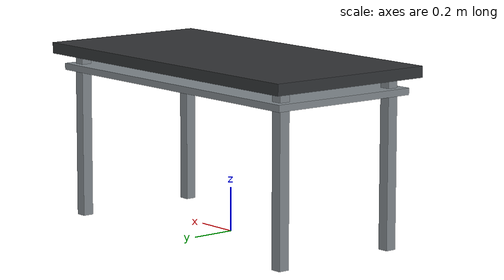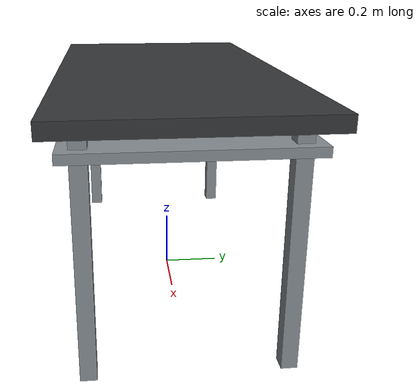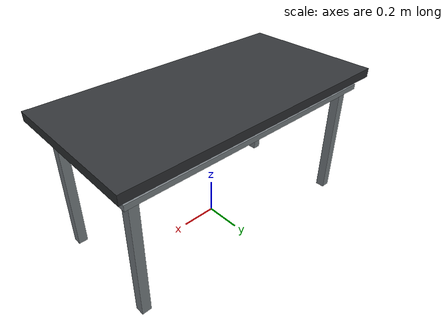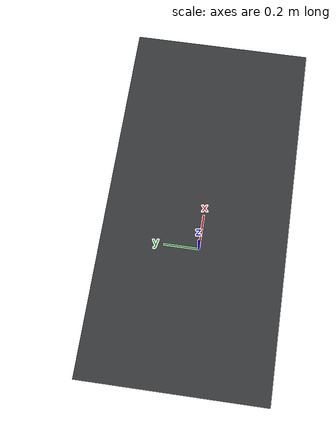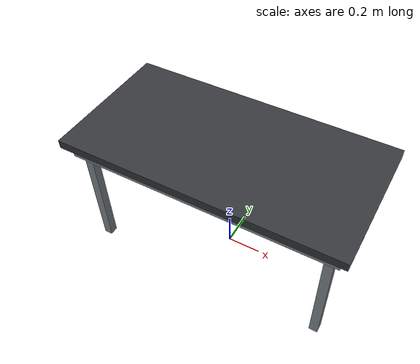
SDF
<?xml version="1.0"?>
<sdf version="1.6">
  <model name="work_table">
    <static>true</static>
    <link name="table">
      <collision name="top_collision">
        <pose>0 0 0.775 0 0 0</pose>
        <geometry>
          <box>
            <size>1.60 0.80 0.05</size>
          </box>
        </geometry>
      </collision>
      <collision name="leg_fl_collision">
        <pose>0.70 0.30 0.375 0 0 0</pose>
        <geometry>
          <box>
            <size>0.05 0.05 0.75</size>
          </box>
        </geometry>
      </collision>
      <collision name="leg_fr_collision">
        <pose>0.70 -0.30 0.375 0 0 0</pose>
        <geometry>
          <box>
            <size>0.05 0.05 0.75</size>
          </box>
        </geometry>
      </collision>
      <collision name="leg_rl_collision">
        <pose>-0.70 0.30 0.375 0 0 0</pose>
        <geometry>
          <box>
            <size>0.05 0.05 0.75</size>
          </box>
        </geometry>
      </collision>
      <collision name="leg_rr_collision">
        <pose>-0.70 -0.30 0.375 0 0 0</pose>
        <geometry>
          <box>
            <size>0.05 0.05 0.75</size>
          </box>
        </geometry>
      </collision>
      <visual name="top_visual">
        <pose>0 0 0.775 0 0 0</pose>
        <geometry>
          <box>
            <size>1.60 0.80 0.05</size>
          </box>
        </geometry>
        <material>
          <ambient>0.16 0.17 0.18 1</ambient>
          <diffuse>0.20 0.21 0.22 1</diffuse>
          <specular>0.06 0.06 0.06 1</specular>
        </material>
      </visual>
      <visual name="frame_visual">
        <pose>0 0 0.69 0 0 0</pose>
        <geometry>
          <box>
            <size>1.52 0.72 0.03</size>
          </box>
        </geometry>
        <material>
          <ambient>0.43 0.46 0.48 1</ambient>
          <diffuse>0.52 0.55 0.57 1</diffuse>
        </material>
      </visual>
      <visual name="leg_fl_visual">
        <pose>0.70 0.30 0.375 0 0 0</pose>
        <geometry>
          <box>
            <size>0.05 0.05 0.75</size>
          </box>
        </geometry>
        <material>
          <ambient>0.43 0.46 0.48 1</ambient>
          <diffuse>0.52 0.55 0.57 1</diffuse>
        </material>
      </visual>
      <visual name="leg_fr_visual">
        <pose>0.70 -0.30 0.375 0 0 0</pose>
        <geometry>
          <box>
            <size>0.05 0.05 0.75</size>
          </box>
        </geometry>
        <material>
          <ambient>0.43 0.46 0.48 1</ambient>
          <diffuse>0.52 0.55 0.57 1</diffuse>
        </material>
      </visual>
      <visual name="leg_rl_visual">
        <pose>-0.70 0.30 0.375 0 0 0</pose>
        <geometry>
          <box>
            <size>0.05 0.05 0.75</size>
          </box>
        </geometry>
        <material>
          <ambient>0.43 0.46 0.48 1</ambient>
          <diffuse>0.52 0.55 0.57 1</diffuse>
        </material>
      </visual>
      <visual name="leg_rr_visual">
        <pose>-0.70 -0.30 0.375 0 0 0</pose>
        <geometry>
          <box>
            <size>0.05 0.05 0.75</size>
          </box>
        </geometry>
        <material>
          <ambient>0.43 0.46 0.48 1</ambient>
          <diffuse>0.52 0.55 0.57 1</diffuse>
        </material>
      </visual>
    </link>
  </model>
</sdf>
